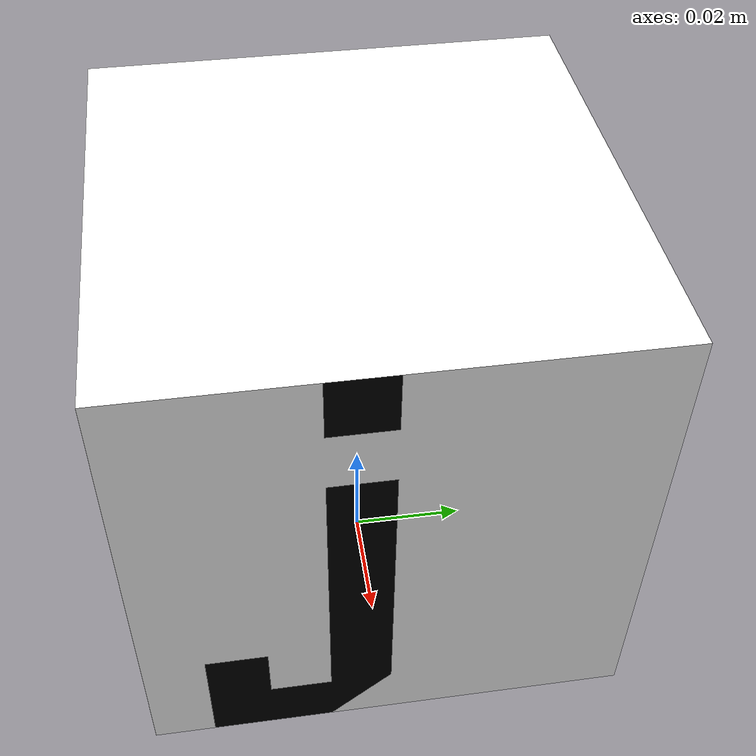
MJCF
<mujoco model="cubeJ">
  <default>
    <default class="visual">
      <geom group="2" type="mesh" contype="0" conaffinity="0"/>
    </default>
    <default class="collision">
      <geom group="3" type="box"/>
    </default>
  </default>
  <asset>
    <material name="Material" specular="1.0" shininess="0.09607843099999999" rgba="1.000000 1.000000 1.000000 1.000000"/>
    <material name="Material.001" specular="0.0" shininess="0.09607843099999999" rgba="0.000000 0.000000 0.000000 1.000000"/>
    <mesh file="cubeJ_0.obj"/>
    <mesh file="cubeJ_1.obj"/>
  </asset>
  <worldbody>
    <body name="cubeJ">
      <geom mesh="cubeJ_0" material="Material.001" class="visual"/>
      <geom mesh="cubeJ_1" material="Material" class="visual" rgba="1 1 1 1"/>

      <geom class="collision" pos="0.00027 -0.000078 0.040286" size="0.04 0.04 0.04" name="cubeJ"/>
    </body>
  </worldbody>
</mujoco>
